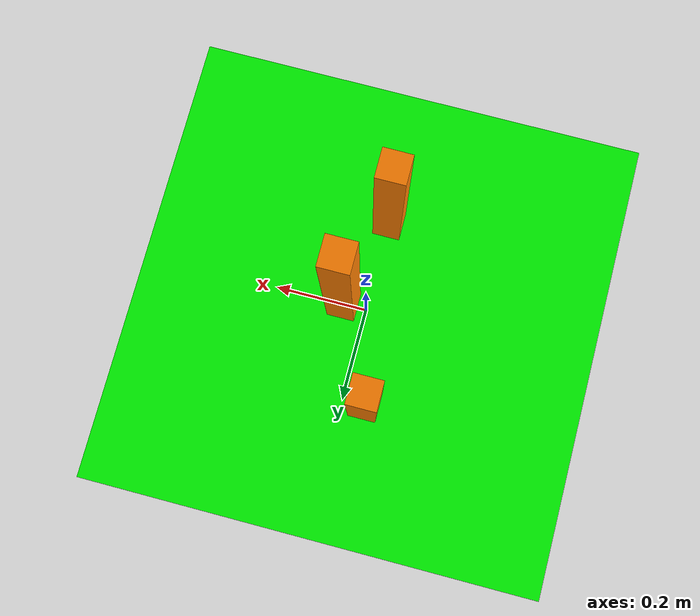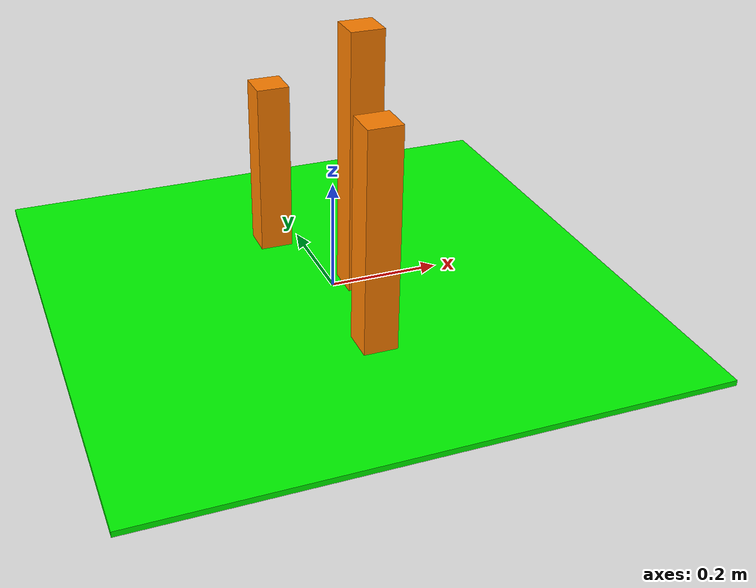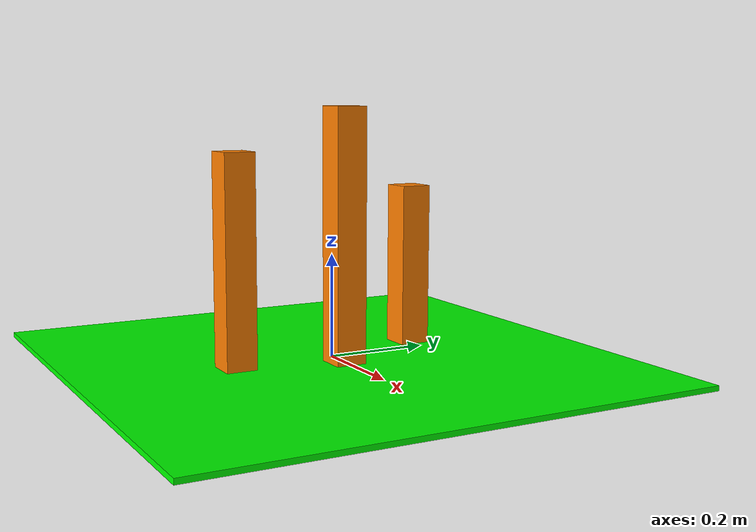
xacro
<?xml version="1.0"?>
<robot xmlns:xacro="http://www.ros.org/wiki/xacro" name="scene_mingruiyu_0">
  <xacro:property name="PI" value="3.1415926535897931" />

  <!-- Include statements for macros -->
  <xacro:include filename="square_pole_macro.xacro"/>

  <!-- GROUND PLANE -->
  <link name="ground_plane">
    <visual>
      <geometry>
        <box size="1 1 0.01"/>
      </geometry>
      <origin xyz="0 0 -0.005" rpy="0 0 0"/>
      <material name="green"/>
    </visual>
    <collision>
      <geometry>
        <box size="1 1 0.01"/>
      </geometry>
      <origin xyz="0 0 -0.005" rpy="0 0 0"/>
    </collision>
  </link>

  <!-- OBSTACLES (created from square poles) -->
  <!-- Creted link has the name: prefix+"_root_link" -->
  <xacro:square_pole prefix="pole_1" parent_link="ground_plane" length="0.48" thickness="0.06">
    <origin xyz="0.05 0.0 0.0" rpy="0 0 0"/>
  </xacro:square_pole>

  <xacro:square_pole prefix="pole_2" parent_link="ground_plane" length="0.4" thickness="0.06">
    <origin xyz="0.0 -0.2 0.0" rpy="0 0 0"/>
  </xacro:square_pole>

  <xacro:square_pole prefix="pole_3" parent_link="ground_plane" length="0.32" thickness="0.06">
    <origin xyz="-0.05 0.2 0.0" rpy="0 0 0"/>
  </xacro:square_pole>

</robot>

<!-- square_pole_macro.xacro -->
<robot xmlns:xacro="http://www.ros.org/wiki/xacro">
    <xacro:include filename="materials.xacro"/>

    <xacro:macro name="square_pole" params="prefix parent_link length thickness *root_pose">
        <link name="${prefix}_root_link">
            <visual>
                <geometry>
                    <box size="${thickness} ${thickness} ${length}"/>
                </geometry>
                <origin xyz="0 0 ${length / 2.0}" rpy="0 0 0"/>
                <material name="orange"/>
            </visual>
            <collision>
                <geometry>
                    <box size="${thickness} ${thickness} ${length}"/>
                </geometry>
                <origin xyz="0 0 ${length / 2.0}" rpy="0 0 0"/>
            </collision>
        </link>

        <joint name="${prefix}_fixture_joint" type="fixed">
            <parent link="${parent_link}"/>
            <child link="${prefix}_root_link" />
            <xacro:insert_block name="root_pose" />
        </joint>

    </xacro:macro>
</robot>

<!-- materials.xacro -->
<robot>
  <material name="dark_gray"><color rgba="0.2 0.2 0.2 1.0" /></material>
  <material name="gray"><color rgba="0.3 0.3 0.3 1.0" /></material>
  <material name="light_gray"><color rgba="0.4 0.4 0.4 1.0" /></material>
  <material name="yellow"><color rgba="0.8 0.8 0.0 1.0" /></material>
  <material name="orange"><color rgba="1.0 0.5 0.0 1.0" /></material>
  <material name="green"><color rgba="0.0 1.0 0.0 1.0" /></material>
  <material name="teal"><color rgba="0.0 1.0 1.0 1.0" /></material>
  <material name="black"><color rgba="0.15 0.15 0.15 1.0" /></material>
</robot>
